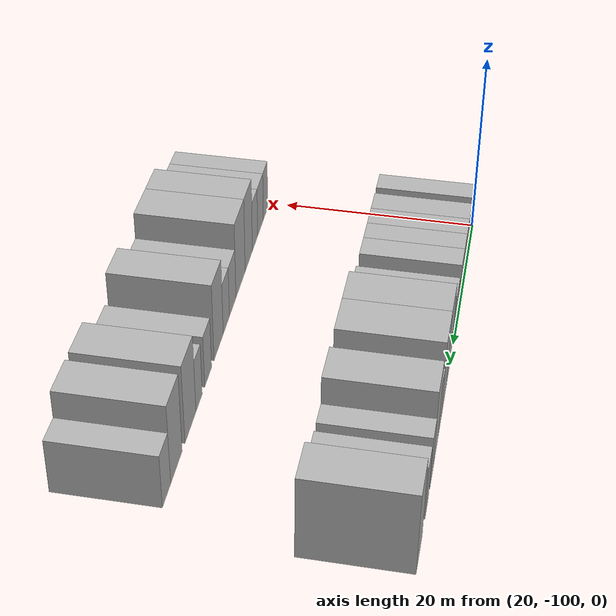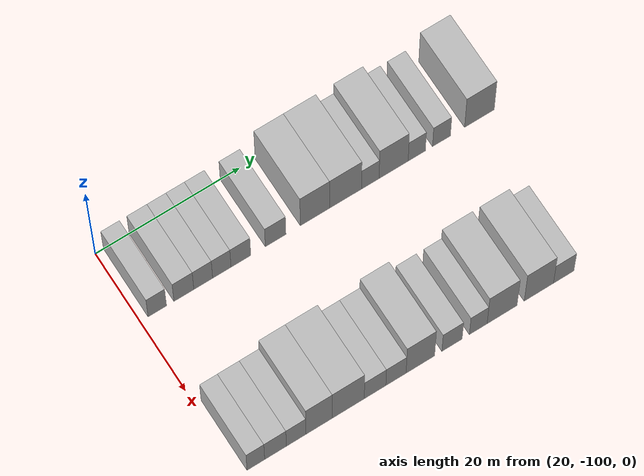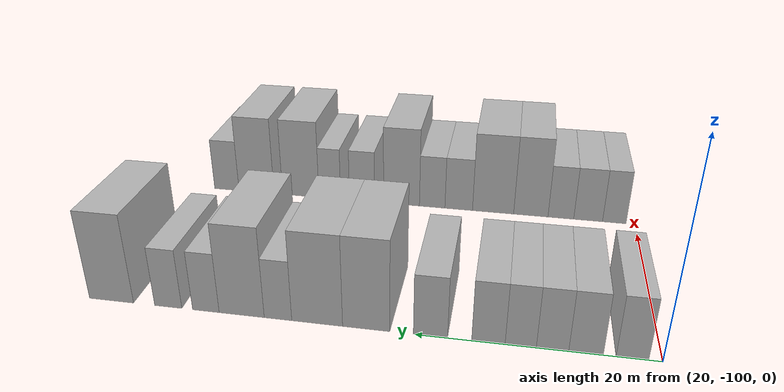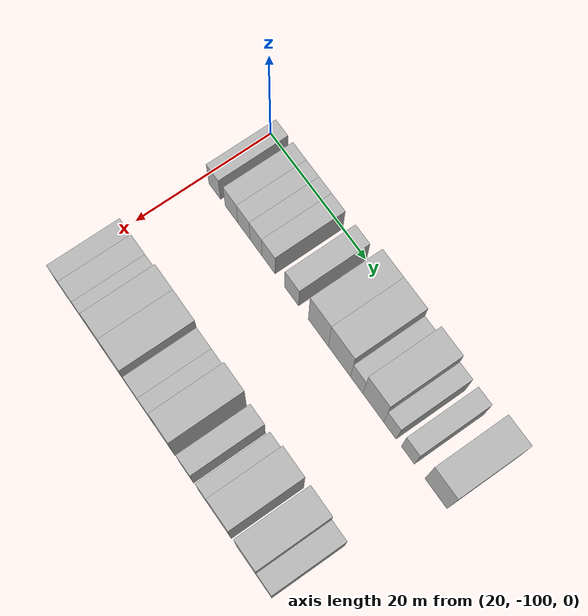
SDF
<sdf version="1.6">
 <world name="default">
  <model name="building_28">
   <static>1</static>
   <pose>25.0000 -97.6408 0 0.000000 0.000000 0.000000</pose>
   <link name="link">
    <pose>0 0 3.00 0 0 0</pose>
    <collision name="collision"><geometry><box><size>10.0000 2.5449 6.0000</size></box></geometry></collision>
    <visual name="visual">
     <cast_shadows>0</cast_shadows>
     <geometry><box><size>10.0000 2.5449 6.0000</size></box></geometry>
     <material>
      <script>
       <uri>model://HANNAS_wall/materials/scripts</uri>
       <uri>model://HANNAS_wall/materials/textures</uri>
       <name>vrc/HANNAS_wall</name>
      </script>
     </material>
    </visual>
   </link>
  </model>
  <model name="building_29">
   <static>1</static>
   <pose>25.0000 -93.9982 0 0.000000 0.000000 0.000000</pose>
   <link name="link">
    <pose>0 0 3.00 0 0 0</pose>
    <collision name="collision"><geometry><box><size>10.0000 2.7402 6.0000</size></box></geometry></collision>
    <visual name="visual">
     <cast_shadows>0</cast_shadows>
     <geometry><box><size>10.0000 2.7402 6.0000</size></box></geometry>
     <material>
      <script>
       <uri>model://HANNAS_wall/materials/scripts</uri>
       <uri>model://HANNAS_wall/materials/textures</uri>
       <name>vrc/HANNAS_wall</name>
      </script>
     </material>
    </visual>
   </link>
  </model>
  <model name="building_30">
   <static>1</static>
   <pose>25.0000 -91.3295 0 0.000000 0.000000 0.000000</pose>
   <link name="link">
    <pose>0 0 3.00 0 0 0</pose>
    <collision name="collision"><geometry><box><size>10.0000 2.5974 6.0000</size></box></geometry></collision>
    <visual name="visual">
     <cast_shadows>0</cast_shadows>
     <geometry><box><size>10.0000 2.5974 6.0000</size></box></geometry>
     <material>
      <script>
       <uri>model://HANNAS_wall/materials/scripts</uri>
       <uri>model://HANNAS_wall/materials/textures</uri>
       <name>vrc/HANNAS_wall</name>
      </script>
     </material>
    </visual>
   </link>
  </model>
  <model name="building_31">
   <static>1</static>
   <pose>25.0000 -88.7630 0 0.000000 0.000000 0.000000</pose>
   <link name="link">
    <pose>0 0 3.00 0 0 0</pose>
    <collision name="collision"><geometry><box><size>10.0000 2.5355 6.0000</size></box></geometry></collision>
    <visual name="visual">
     <cast_shadows>0</cast_shadows>
     <geometry><box><size>10.0000 2.5355 6.0000</size></box></geometry>
     <material>
      <script>
       <uri>model://HANNAS_wall/materials/scripts</uri>
       <uri>model://HANNAS_wall/materials/textures</uri>
       <name>vrc/HANNAS_wall</name>
      </script>
     </material>
    </visual>
   </link>
  </model>
  <model name="building_32">
   <static>1</static>
   <pose>25.0000 -86.1214 0 0.000000 0.000000 0.000000</pose>
   <link name="link">
    <pose>0 0 3.00 0 0 0</pose>
    <collision name="collision"><geometry><box><size>10.0000 2.7477 6.0000</size></box></geometry></collision>
    <visual name="visual">
     <cast_shadows>0</cast_shadows>
     <geometry><box><size>10.0000 2.7477 6.0000</size></box></geometry>
     <material>
      <script>
       <uri>model://HANNAS_wall/materials/scripts</uri>
       <uri>model://HANNAS_wall/materials/textures</uri>
       <name>vrc/HANNAS_wall</name>
      </script>
     </material>
    </visual>
   </link>
  </model>
  <model name="building_33">
   <static>1</static>
   <pose>25.0000 -81.3096 0 0.000000 0.000000 0.000000</pose>
   <link name="link">
    <pose>0 0 3.00 0 0 0</pose>
    <collision name="collision"><geometry><box><size>10.0000 2.8758 6.0000</size></box></geometry></collision>
    <visual name="visual">
     <cast_shadows>0</cast_shadows>
     <geometry><box><size>10.0000 2.8758 6.0000</size></box></geometry>
     <material>
      <script>
       <uri>model://HANNAS_wall/materials/scripts</uri>
       <uri>model://HANNAS_wall/materials/textures</uri>
       <name>vrc/HANNAS_wall</name>
      </script>
     </material>
    </visual>
   </link>
  </model>
  <model name="building_34">
   <static>1</static>
   <pose>25.0000 -75.8325 0 0.000000 0.000000 0.000000</pose>
   <link name="link">
    <pose>0 0 4.50 0 0 0</pose>
    <collision name="collision"><geometry><box><size>10.0000 4.0785 9.0000</size></box></geometry></collision>
    <visual name="visual">
     <cast_shadows>0</cast_shadows>
     <geometry><box><size>10.0000 4.0785 9.0000</size></box></geometry>
     <material>
      <script>
       <uri>model://HANNAS_wall/materials/scripts</uri>
       <uri>model://HANNAS_wall/materials/textures</uri>
       <name>vrc/HANNAS_wall</name>
      </script>
     </material>
    </visual>
   </link>
  </model>
  <model name="building_35">
   <static>1</static>
   <pose>25.0000 -71.5565 0 0.000000 0.000000 0.000000</pose>
   <link name="link">
    <pose>0 0 4.50 0 0 0</pose>
    <collision name="collision"><geometry><box><size>10.0000 4.4735 9.0000</size></box></geometry></collision>
    <visual name="visual">
     <cast_shadows>0</cast_shadows>
     <geometry><box><size>10.0000 4.4735 9.0000</size></box></geometry>
     <material>
      <script>
       <uri>model://HANNAS_wall/materials/scripts</uri>
       <uri>model://HANNAS_wall/materials/textures</uri>
       <name>vrc/HANNAS_wall</name>
      </script>
     </material>
    </visual>
   </link>
  </model>
  <model name="building_36">
   <static>1</static>
   <pose>25.0000 -68.0901 0 0.000000 0.000000 0.000000</pose>
   <link name="link">
    <pose>0 0 3.00 0 0 0</pose>
    <collision name="collision"><geometry><box><size>10.0000 2.4593 6.0000</size></box></geometry></collision>
    <visual name="visual">
     <cast_shadows>0</cast_shadows>
     <geometry><box><size>10.0000 2.4593 6.0000</size></box></geometry>
     <material>
      <script>
       <uri>model://HANNAS_wall/materials/scripts</uri>
       <uri>model://HANNAS_wall/materials/textures</uri>
       <name>vrc/HANNAS_wall</name>
      </script>
     </material>
    </visual>
   </link>
  </model>
  <model name="building_37">
   <static>1</static>
   <pose>25.0000 -64.8145 0 0.000000 0.000000 0.000000</pose>
   <link name="link">
    <pose>0 0 4.50 0 0 0</pose>
    <collision name="collision"><geometry><box><size>10.0000 4.0919 9.0000</size></box></geometry></collision>
    <visual name="visual">
     <cast_shadows>0</cast_shadows>
     <geometry><box><size>10.0000 4.0919 9.0000</size></box></geometry>
     <material>
      <script>
       <uri>model://HANNAS_wall/materials/scripts</uri>
       <uri>model://HANNAS_wall/materials/textures</uri>
       <name>vrc/HANNAS_wall</name>
      </script>
     </material>
    </visual>
   </link>
  </model>
  <model name="building_38">
   <static>1</static>
   <pose>25.0000 -61.5441 0 0.000000 0.000000 0.000000</pose>
   <link name="link">
    <pose>0 0 3.00 0 0 0</pose>
    <collision name="collision"><geometry><box><size>10.0000 2.4487 6.0000</size></box></geometry></collision>
    <visual name="visual">
     <cast_shadows>0</cast_shadows>
     <geometry><box><size>10.0000 2.4487 6.0000</size></box></geometry>
     <material>
      <script>
       <uri>model://HANNAS_wall/materials/scripts</uri>
       <uri>model://HANNAS_wall/materials/textures</uri>
       <name>vrc/HANNAS_wall</name>
      </script>
     </material>
    </visual>
   </link>
  </model>
  <model name="building_39">
   <static>1</static>
   <pose>25.0000 -58.0500 0 0.000000 0.000000 0.000000</pose>
   <link name="link">
    <pose>0 0 3.00 0 0 0</pose>
    <collision name="collision"><geometry><box><size>10.0000 2.5395 6.0000</size></box></geometry></collision>
    <visual name="visual">
     <cast_shadows>0</cast_shadows>
     <geometry><box><size>10.0000 2.5395 6.0000</size></box></geometry>
     <material>
      <script>
       <uri>model://HANNAS_wall/materials/scripts</uri>
       <uri>model://HANNAS_wall/materials/textures</uri>
       <name>vrc/HANNAS_wall</name>
      </script>
     </material>
    </visual>
   </link>
  </model>
  <model name="building_40">
   <static>1</static>
   <pose>25.0000 -52.6730 0 0.000000 0.000000 0.000000</pose>
   <link name="link">
    <pose>0 0 4.50 0 0 0</pose>
    <collision name="collision"><geometry><box><size>10.0000 4.2145 9.0000</size></box></geometry></collision>
    <visual name="visual">
     <cast_shadows>0</cast_shadows>
     <geometry><box><size>10.0000 4.2145 9.0000</size></box></geometry>
     <material>
      <script>
       <uri>model://HANNAS_wall/materials/scripts</uri>
       <uri>model://HANNAS_wall/materials/textures</uri>
       <name>vrc/HANNAS_wall</name>
      </script>
     </material>
    </visual>
   </link>
  </model>
  <model name="building_128">
   <static>1</static>
   <pose>47.0000 -97.8955 0 0.000000 0.000000 0.000000</pose>
   <link name="link">
    <pose>0 0 3.00 0 0 0</pose>
    <collision name="collision"><geometry><box><size>10.0000 2.4022 6.0000</size></box></geometry></collision>
    <visual name="visual">
     <cast_shadows>0</cast_shadows>
     <geometry><box><size>10.0000 2.4022 6.0000</size></box></geometry>
     <material>
      <script>
       <uri>model://HANNAS_wall/materials/scripts</uri>
       <uri>model://HANNAS_wall/materials/textures</uri>
       <name>vrc/HANNAS_wall</name>
      </script>
     </material>
    </visual>
   </link>
  </model>
  <model name="building_129">
   <static>1</static>
   <pose>47.0000 -95.2131 0 0.000000 0.000000 0.000000</pose>
   <link name="link">
    <pose>0 0 3.00 0 0 0</pose>
    <collision name="collision"><geometry><box><size>10.0000 2.9627 6.0000</size></box></geometry></collision>
    <visual name="visual">
     <cast_shadows>0</cast_shadows>
     <geometry><box><size>10.0000 2.9627 6.0000</size></box></geometry>
     <material>
      <script>
       <uri>model://HANNAS_wall/materials/scripts</uri>
       <uri>model://HANNAS_wall/materials/textures</uri>
       <name>vrc/HANNAS_wall</name>
      </script>
     </material>
    </visual>
   </link>
  </model>
  <model name="building_130">
   <static>1</static>
   <pose>47.0000 -92.3951 0 0.000000 0.000000 0.000000</pose>
   <link name="link">
    <pose>0 0 3.00 0 0 0</pose>
    <collision name="collision"><geometry><box><size>10.0000 2.6732 6.0000</size></box></geometry></collision>
    <visual name="visual">
     <cast_shadows>0</cast_shadows>
     <geometry><box><size>10.0000 2.6732 6.0000</size></box></geometry>
     <material>
      <script>
       <uri>model://HANNAS_wall/materials/scripts</uri>
       <uri>model://HANNAS_wall/materials/textures</uri>
       <name>vrc/HANNAS_wall</name>
      </script>
     </material>
    </visual>
   </link>
  </model>
  <model name="building_131">
   <static>1</static>
   <pose>47.0000 -89.2547 0 0.000000 0.000000 0.000000</pose>
   <link name="link">
    <pose>0 0 4.50 0 0 0</pose>
    <collision name="collision"><geometry><box><size>10.0000 3.6077 9.0000</size></box></geometry></collision>
    <visual name="visual">
     <cast_shadows>0</cast_shadows>
     <geometry><box><size>10.0000 3.6077 9.0000</size></box></geometry>
     <material>
      <script>
       <uri>model://HANNAS_wall/materials/scripts</uri>
       <uri>model://HANNAS_wall/materials/textures</uri>
       <name>vrc/HANNAS_wall</name>
      </script>
     </material>
    </visual>
   </link>
  </model>
  <model name="building_132">
   <static>1</static>
   <pose>47.0000 -85.2551 0 0.000000 0.000000 0.000000</pose>
   <link name="link">
    <pose>0 0 4.50 0 0 0</pose>
    <collision name="collision"><geometry><box><size>10.0000 4.3915 9.0000</size></box></geometry></collision>
    <visual name="visual">
     <cast_shadows>0</cast_shadows>
     <geometry><box><size>10.0000 4.3915 9.0000</size></box></geometry>
     <material>
      <script>
       <uri>model://HANNAS_wall/materials/scripts</uri>
       <uri>model://HANNAS_wall/materials/textures</uri>
       <name>vrc/HANNAS_wall</name>
      </script>
     </material>
    </visual>
   </link>
  </model>
  <model name="building_133">
   <static>1</static>
   <pose>47.0000 -81.5689 0 0.000000 0.000000 0.000000</pose>
   <link name="link">
    <pose>0 0 3.00 0 0 0</pose>
    <collision name="collision"><geometry><box><size>10.0000 2.9810 6.0000</size></box></geometry></collision>
    <visual name="visual">
     <cast_shadows>0</cast_shadows>
     <geometry><box><size>10.0000 2.9810 6.0000</size></box></geometry>
     <material>
      <script>
       <uri>model://HANNAS_wall/materials/scripts</uri>
       <uri>model://HANNAS_wall/materials/textures</uri>
       <name>vrc/HANNAS_wall</name>
      </script>
     </material>
    </visual>
   </link>
  </model>
  <model name="building_134">
   <static>1</static>
   <pose>47.0000 -78.6858 0 0.000000 0.000000 0.000000</pose>
   <link name="link">
    <pose>0 0 3.00 0 0 0</pose>
    <collision name="collision"><geometry><box><size>10.0000 2.7850 6.0000</size></box></geometry></collision>
    <visual name="visual">
     <cast_shadows>0</cast_shadows>
     <geometry><box><size>10.0000 2.7850 6.0000</size></box></geometry>
     <material>
      <script>
       <uri>model://HANNAS_wall/materials/scripts</uri>
       <uri>model://HANNAS_wall/materials/textures</uri>
       <name>vrc/HANNAS_wall</name>
      </script>
     </material>
    </visual>
   </link>
  </model>
  <model name="building_135">
   <static>1</static>
   <pose>47.0000 -75.3108 0 0.000000 0.000000 0.000000</pose>
   <link name="link">
    <pose>0 0 4.50 0 0 0</pose>
    <collision name="collision"><geometry><box><size>10.0000 3.9650 9.0000</size></box></geometry></collision>
    <visual name="visual">
     <cast_shadows>0</cast_shadows>
     <geometry><box><size>10.0000 3.9650 9.0000</size></box></geometry>
     <material>
      <script>
       <uri>model://HANNAS_wall/materials/scripts</uri>
       <uri>model://HANNAS_wall/materials/textures</uri>
       <name>vrc/HANNAS_wall</name>
      </script>
     </material>
    </visual>
   </link>
  </model>
  <model name="building_136">
   <static>1</static>
   <pose>47.0000 -70.9172 0 0.000000 0.000000 0.000000</pose>
   <link name="link">
    <pose>0 0 3.00 0 0 0</pose>
    <collision name="collision"><geometry><box><size>10.0000 2.8223 6.0000</size></box></geometry></collision>
    <visual name="visual">
     <cast_shadows>0</cast_shadows>
     <geometry><box><size>10.0000 2.8223 6.0000</size></box></geometry>
     <material>
      <script>
       <uri>model://HANNAS_wall/materials/scripts</uri>
       <uri>model://HANNAS_wall/materials/textures</uri>
       <name>vrc/HANNAS_wall</name>
      </script>
     </material>
    </visual>
   </link>
  </model>
  <model name="building_137">
   <static>1</static>
   <pose>47.0000 -67.2722 0 0.000000 0.000000 0.000000</pose>
   <link name="link">
    <pose>0 0 3.00 0 0 0</pose>
    <collision name="collision"><geometry><box><size>10.0000 2.4675 6.0000</size></box></geometry></collision>
    <visual name="visual">
     <cast_shadows>0</cast_shadows>
     <geometry><box><size>10.0000 2.4675 6.0000</size></box></geometry>
     <material>
      <script>
       <uri>model://HANNAS_wall/materials/scripts</uri>
       <uri>model://HANNAS_wall/materials/textures</uri>
       <name>vrc/HANNAS_wall</name>
      </script>
     </material>
    </visual>
   </link>
  </model>
  <model name="building_138">
   <static>1</static>
   <pose>47.0000 -63.9435 0 0.000000 0.000000 0.000000</pose>
   <link name="link">
    <pose>0 0 4.50 0 0 0</pose>
    <collision name="collision"><geometry><box><size>10.0000 4.1899 9.0000</size></box></geometry></collision>
    <visual name="visual">
     <cast_shadows>0</cast_shadows>
     <geometry><box><size>10.0000 4.1899 9.0000</size></box></geometry>
     <material>
      <script>
       <uri>model://HANNAS_wall/materials/scripts</uri>
       <uri>model://HANNAS_wall/materials/textures</uri>
       <name>vrc/HANNAS_wall</name>
      </script>
     </material>
    </visual>
   </link>
  </model>
  <model name="building_139">
   <static>1</static>
   <pose>47.0000 -58.7957 0 0.000000 0.000000 0.000000</pose>
   <link name="link">
    <pose>0 0 4.50 0 0 0</pose>
    <collision name="collision"><geometry><box><size>10.0000 4.1057 9.0000</size></box></geometry></collision>
    <visual name="visual">
     <cast_shadows>0</cast_shadows>
     <geometry><box><size>10.0000 4.1057 9.0000</size></box></geometry>
     <material>
      <script>
       <uri>model://HANNAS_wall/materials/scripts</uri>
       <uri>model://HANNAS_wall/materials/textures</uri>
       <name>vrc/HANNAS_wall</name>
      </script>
     </material>
    </visual>
   </link>
  </model>
  <model name="building_140">
   <static>1</static>
   <pose>47.0000 -55.3020 0 0.000000 0.000000 0.000000</pose>
   <link name="link">
    <pose>0 0 3.00 0 0 0</pose>
    <collision name="collision"><geometry><box><size>10.0000 2.8819 6.0000</size></box></geometry></collision>
    <visual name="visual">
     <cast_shadows>0</cast_shadows>
     <geometry><box><size>10.0000 2.8819 6.0000</size></box></geometry>
     <material>
      <script>
       <uri>model://HANNAS_wall/materials/scripts</uri>
       <uri>model://HANNAS_wall/materials/textures</uri>
       <name>vrc/HANNAS_wall</name>
      </script>
     </material>
    </visual>
   </link>
  </model>
 </world>
</sdf>
